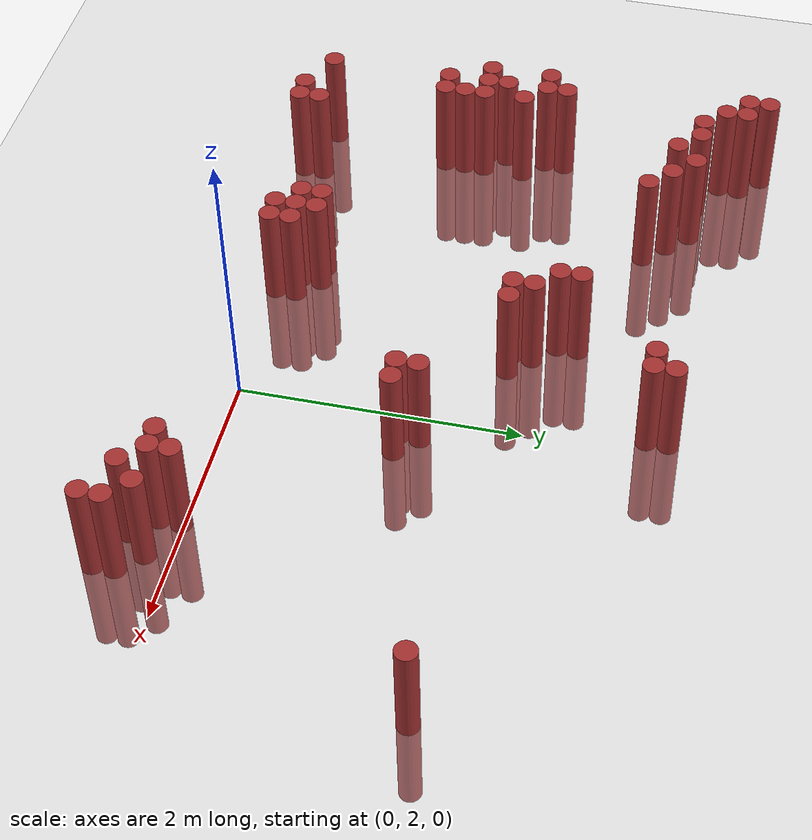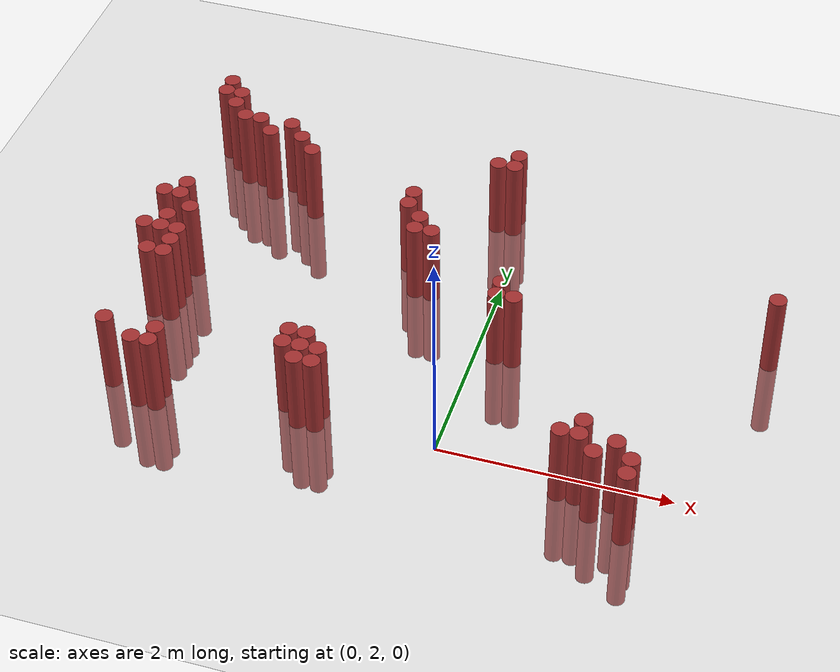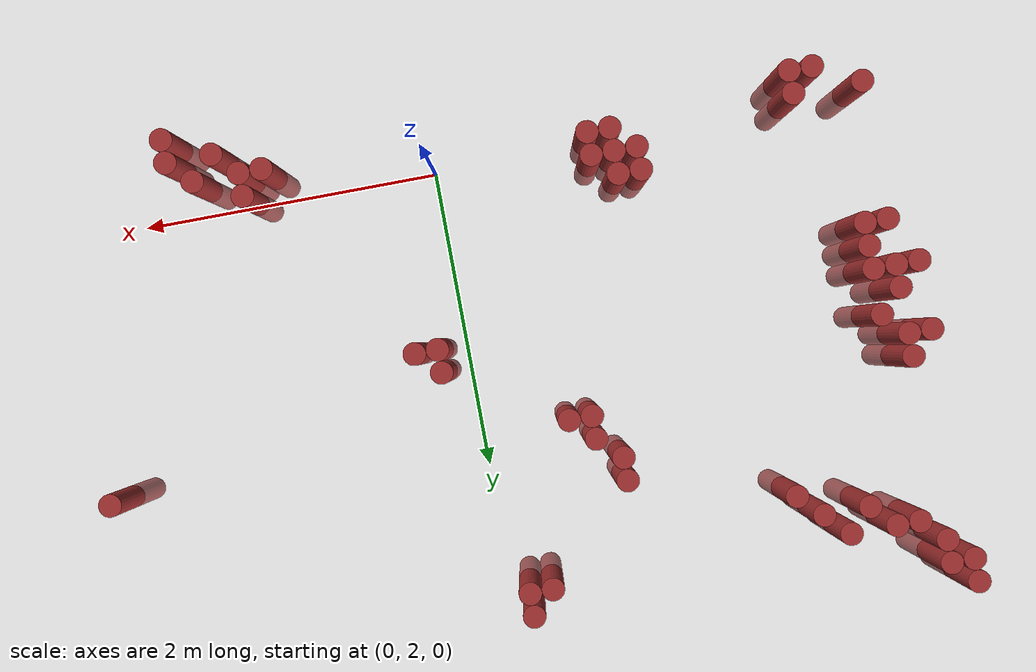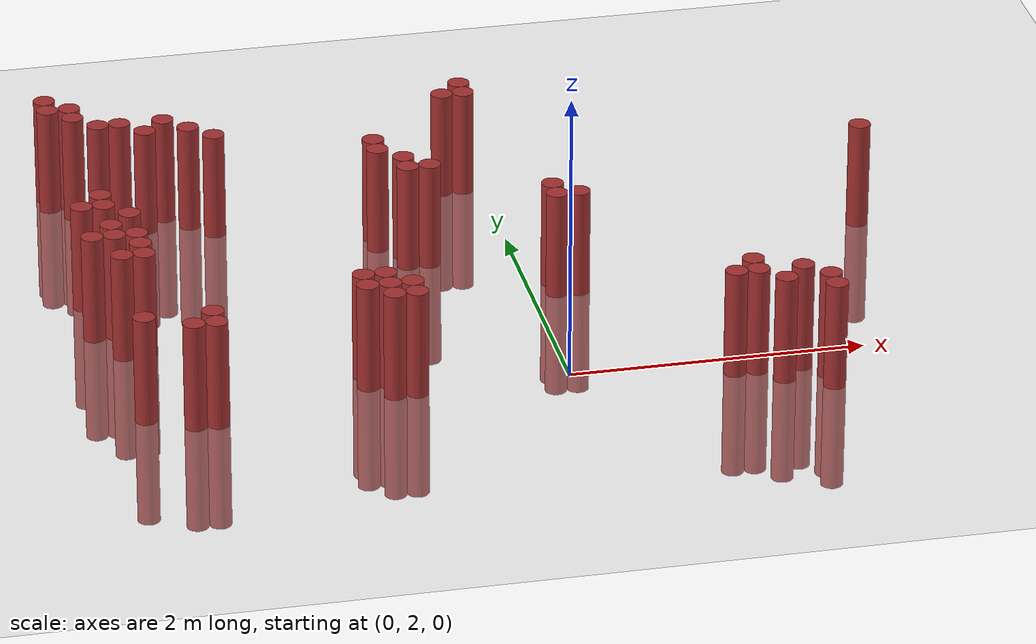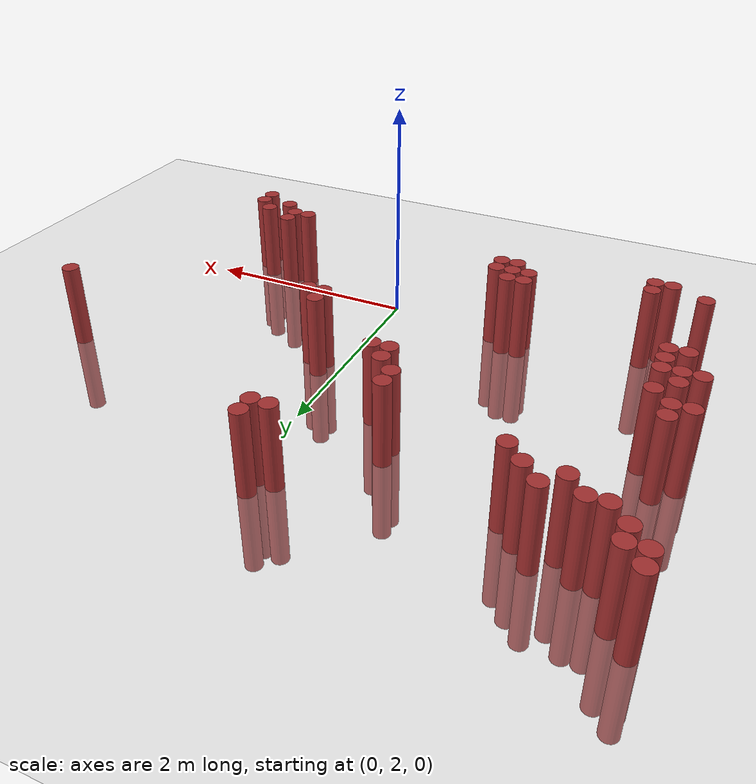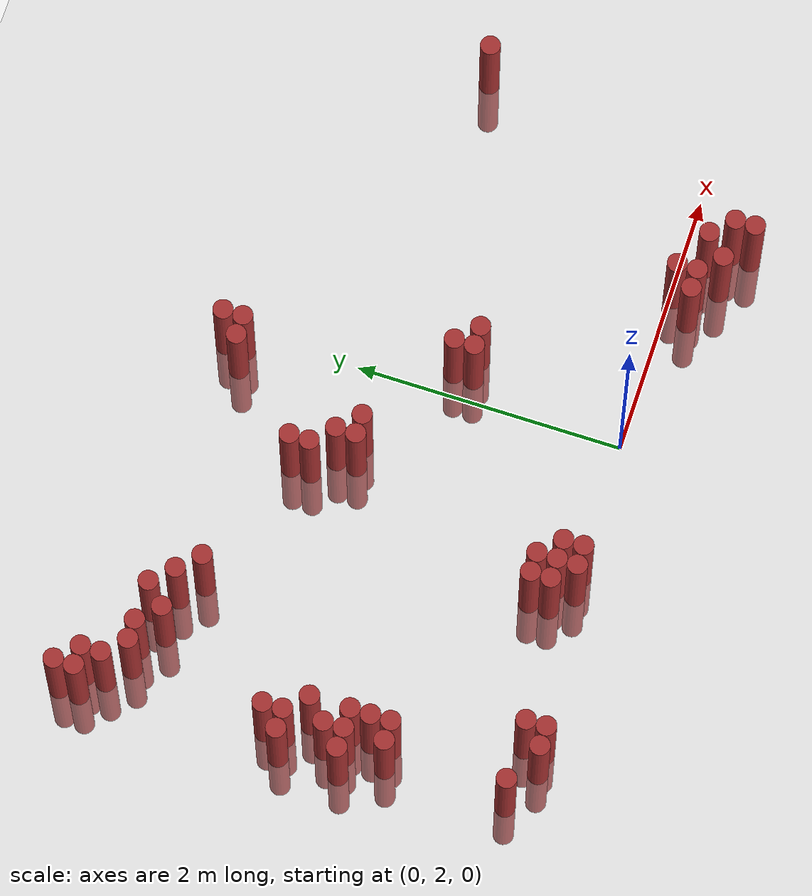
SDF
<sdf version="1.6">
 <world name="default">
  <model name="ground_plane">
   <static>1</static>
   <link name="link">
    <collision name="collision">
     <geometry><plane><normal>0 0 1</normal><size>100 100</size></plane></geometry>
     <surface><friction><ode><mu>100</mu><mu2>50</mu2></ode></friction></surface>
    </collision>
    <visual name="visual">
     <cast_shadows>0</cast_shadows>
     <geometry><plane><normal>0 0 1</normal><size>100 100</size></plane></geometry>
     <material>
      <script><uri>file://media/materials/scripts/gazebo.material</uri><name>Gazebo/Grey</name></script>
     </material>
    </visual>
   </link>
  </model>
  <model name="unit_cylinder_310">
   <static>1</static>
   <pose>-2.975000 3.175000 0.000000 0.000000 0.000000 0.000000</pose>
   <link name="link">
    <inertial>
     <mass>1</mass>
     <inertia><ixx>0.145833</ixx><ixy>0</ixy><ixz>0</ixz><iyy>0.145833</iyy><iyz>0</iyz><izz>0.125</izz></inertia>
    </inertial>
    <collision name="collision">
     <geometry><cylinder><radius>0.075000</radius><length>1.5</length></cylinder></geometry>
    </collision>
    <visual name="visual">
     <geometry><cylinder><radius>0.075000</radius><length>1.5</length></cylinder></geometry>
     <material>
      <ambient>0.648000 0.192000 0.192000 1</ambient>
      <diffuse>0.648000 0.192000 0.192000 1</diffuse>
     </material>
     <material>
      <script><name>Gazebo/Grey</name><uri>file://media/materials/scripts/gazebo.material</uri></script>
     </material>
    </visual>
   </link>
  </model>
  <model name="unit_cylinder_311">
   <static>1</static>
   <pose>-2.975000 3.625000 0.000000 0.000000 0.000000 0.000000</pose>
   <link name="link">
    <inertial>
     <mass>1</mass>
     <inertia><ixx>0.145833</ixx><ixy>0</ixy><ixz>0</ixz><iyy>0.145833</iyy><iyz>0</iyz><izz>0.125</izz></inertia>
    </inertial>
    <collision name="collision">
     <geometry><cylinder><radius>0.075000</radius><length>1.5</length></cylinder></geometry>
    </collision>
    <visual name="visual">
     <geometry><cylinder><radius>0.075000</radius><length>1.5</length></cylinder></geometry>
     <material>
      <ambient>0.648000 0.192000 0.192000 1</ambient>
      <diffuse>0.648000 0.192000 0.192000 1</diffuse>
     </material>
     <material>
      <script><name>Gazebo/Grey</name><uri>file://media/materials/scripts/gazebo.material</uri></script>
     </material>
    </visual>
   </link>
  </model>
  <model name="unit_cylinder_312">
   <static>1</static>
   <pose>-2.975000 5.125000 0.000000 0.000000 0.000000 0.000000</pose>
   <link name="link">
    <inertial>
     <mass>1</mass>
     <inertia><ixx>0.145833</ixx><ixy>0</ixy><ixz>0</ixz><iyy>0.145833</iyy><iyz>0</iyz><izz>0.125</izz></inertia>
    </inertial>
    <collision name="collision">
     <geometry><cylinder><radius>0.075000</radius><length>1.5</length></cylinder></geometry>
    </collision>
    <visual name="visual">
     <geometry><cylinder><radius>0.075000</radius><length>1.5</length></cylinder></geometry>
     <material>
      <ambient>0.648000 0.192000 0.192000 1</ambient>
      <diffuse>0.648000 0.192000 0.192000 1</diffuse>
     </material>
     <material>
      <script><name>Gazebo/Grey</name><uri>file://media/materials/scripts/gazebo.material</uri></script>
     </material>
    </visual>
   </link>
  </model>
  <model name="unit_cylinder_313">
   <static>1</static>
   <pose>-2.975000 5.275000 0.000000 0.000000 0.000000 0.000000</pose>
   <link name="link">
    <inertial>
     <mass>1</mass>
     <inertia><ixx>0.145833</ixx><ixy>0</ixy><ixz>0</ixz><iyy>0.145833</iyy><iyz>0</iyz><izz>0.125</izz></inertia>
    </inertial>
    <collision name="collision">
     <geometry><cylinder><radius>0.075000</radius><length>1.5</length></cylinder></geometry>
    </collision>
    <visual name="visual">
     <geometry><cylinder><radius>0.075000</radius><length>1.5</length></cylinder></geometry>
     <material>
      <ambient>0.648000 0.192000 0.192000 1</ambient>
      <diffuse>0.648000 0.192000 0.192000 1</diffuse>
     </material>
     <material>
      <script><name>Gazebo/Grey</name><uri>file://media/materials/scripts/gazebo.material</uri></script>
     </material>
    </visual>
   </link>
  </model>
  <model name="unit_cylinder_317">
   <static>1</static>
   <pose>-2.825000 1.975000 0.000000 0.000000 0.000000 0.000000</pose>
   <link name="link">
    <inertial>
     <mass>1</mass>
     <inertia><ixx>0.145833</ixx><ixy>0</ixy><ixz>0</ixz><iyy>0.145833</iyy><iyz>0</iyz><izz>0.125</izz></inertia>
    </inertial>
    <collision name="collision">
     <geometry><cylinder><radius>0.075000</radius><length>1.5</length></cylinder></geometry>
    </collision>
    <visual name="visual">
     <geometry><cylinder><radius>0.075000</radius><length>1.5</length></cylinder></geometry>
     <material>
      <ambient>0.648000 0.192000 0.192000 1</ambient>
      <diffuse>0.648000 0.192000 0.192000 1</diffuse>
     </material>
     <material>
      <script><name>Gazebo/Grey</name><uri>file://media/materials/scripts/gazebo.material</uri></script>
     </material>
    </visual>
   </link>
  </model>
  <model name="unit_cylinder_318">
   <static>1</static>
   <pose>-2.825000 2.875000 0.000000 0.000000 0.000000 0.000000</pose>
   <link name="link">
    <inertial>
     <mass>1</mass>
     <inertia><ixx>0.145833</ixx><ixy>0</ixy><ixz>0</ixz><iyy>0.145833</iyy><iyz>0</iyz><izz>0.125</izz></inertia>
    </inertial>
    <collision name="collision">
     <geometry><cylinder><radius>0.075000</radius><length>1.5</length></cylinder></geometry>
    </collision>
    <visual name="visual">
     <geometry><cylinder><radius>0.075000</radius><length>1.5</length></cylinder></geometry>
     <material>
      <ambient>0.648000 0.192000 0.192000 1</ambient>
      <diffuse>0.648000 0.192000 0.192000 1</diffuse>
     </material>
     <material>
      <script><name>Gazebo/Grey</name><uri>file://media/materials/scripts/gazebo.material</uri></script>
     </material>
    </visual>
   </link>
  </model>
  <model name="unit_cylinder_319">
   <static>1</static>
   <pose>-2.825000 3.175000 0.000000 0.000000 0.000000 0.000000</pose>
   <link name="link">
    <inertial>
     <mass>1</mass>
     <inertia><ixx>0.145833</ixx><ixy>0</ixy><ixz>0</ixz><iyy>0.145833</iyy><iyz>0</iyz><izz>0.125</izz></inertia>
    </inertial>
    <collision name="collision">
     <geometry><cylinder><radius>0.075000</radius><length>1.5</length></cylinder></geometry>
    </collision>
    <visual name="visual">
     <geometry><cylinder><radius>0.075000</radius><length>1.5</length></cylinder></geometry>
     <material>
      <ambient>0.648000 0.192000 0.192000 1</ambient>
      <diffuse>0.648000 0.192000 0.192000 1</diffuse>
     </material>
     <material>
      <script><name>Gazebo/Grey</name><uri>file://media/materials/scripts/gazebo.material</uri></script>
     </material>
    </visual>
   </link>
  </model>
  <model name="unit_cylinder_320">
   <static>1</static>
   <pose>-2.825000 3.325000 0.000000 0.000000 0.000000 0.000000</pose>
   <link name="link">
    <inertial>
     <mass>1</mass>
     <inertia><ixx>0.145833</ixx><ixy>0</ixy><ixz>0</ixz><iyy>0.145833</iyy><iyz>0</iyz><izz>0.125</izz></inertia>
    </inertial>
    <collision name="collision">
     <geometry><cylinder><radius>0.075000</radius><length>1.5</length></cylinder></geometry>
    </collision>
    <visual name="visual">
     <geometry><cylinder><radius>0.075000</radius><length>1.5</length></cylinder></geometry>
     <material>
      <ambient>0.648000 0.192000 0.192000 1</ambient>
      <diffuse>0.648000 0.192000 0.192000 1</diffuse>
     </material>
     <material>
      <script><name>Gazebo/Grey</name><uri>file://media/materials/scripts/gazebo.material</uri></script>
     </material>
    </visual>
   </link>
  </model>
  <model name="unit_cylinder_321">
   <static>1</static>
   <pose>-2.825000 3.625000 0.000000 0.000000 0.000000 0.000000</pose>
   <link name="link">
    <inertial>
     <mass>1</mass>
     <inertia><ixx>0.145833</ixx><ixy>0</ixy><ixz>0</ixz><iyy>0.145833</iyy><iyz>0</iyz><izz>0.125</izz></inertia>
    </inertial>
    <collision name="collision">
     <geometry><cylinder><radius>0.075000</radius><length>1.5</length></cylinder></geometry>
    </collision>
    <visual name="visual">
     <geometry><cylinder><radius>0.075000</radius><length>1.5</length></cylinder></geometry>
     <material>
      <ambient>0.648000 0.192000 0.192000 1</ambient>
      <diffuse>0.648000 0.192000 0.192000 1</diffuse>
     </material>
     <material>
      <script><name>Gazebo/Grey</name><uri>file://media/materials/scripts/gazebo.material</uri></script>
     </material>
    </visual>
   </link>
  </model>
  <model name="unit_cylinder_322">
   <static>1</static>
   <pose>-2.825000 3.775000 0.000000 0.000000 0.000000 0.000000</pose>
   <link name="link">
    <inertial>
     <mass>1</mass>
     <inertia><ixx>0.145833</ixx><ixy>0</ixy><ixz>0</ixz><iyy>0.145833</iyy><iyz>0</iyz><izz>0.125</izz></inertia>
    </inertial>
    <collision name="collision">
     <geometry><cylinder><radius>0.075000</radius><length>1.5</length></cylinder></geometry>
    </collision>
    <visual name="visual">
     <geometry><cylinder><radius>0.075000</radius><length>1.5</length></cylinder></geometry>
     <material>
      <ambient>0.648000 0.192000 0.192000 1</ambient>
      <diffuse>0.648000 0.192000 0.192000 1</diffuse>
     </material>
     <material>
      <script><name>Gazebo/Grey</name><uri>file://media/materials/scripts/gazebo.material</uri></script>
     </material>
    </visual>
   </link>
  </model>
  <model name="unit_cylinder_323">
   <static>1</static>
   <pose>-2.825000 4.975000 0.000000 0.000000 0.000000 0.000000</pose>
   <link name="link">
    <inertial>
     <mass>1</mass>
     <inertia><ixx>0.145833</ixx><ixy>0</ixy><ixz>0</ixz><iyy>0.145833</iyy><iyz>0</iyz><izz>0.125</izz></inertia>
    </inertial>
    <collision name="collision">
     <geometry><cylinder><radius>0.075000</radius><length>1.5</length></cylinder></geometry>
    </collision>
    <visual name="visual">
     <geometry><cylinder><radius>0.075000</radius><length>1.5</length></cylinder></geometry>
     <material>
      <ambient>0.648000 0.192000 0.192000 1</ambient>
      <diffuse>0.648000 0.192000 0.192000 1</diffuse>
     </material>
     <material>
      <script><name>Gazebo/Grey</name><uri>file://media/materials/scripts/gazebo.material</uri></script>
     </material>
    </visual>
   </link>
  </model>
  <model name="unit_cylinder_324">
   <static>1</static>
   <pose>-2.825000 5.125000 0.000000 0.000000 0.000000 0.000000</pose>
   <link name="link">
    <inertial>
     <mass>1</mass>
     <inertia><ixx>0.145833</ixx><ixy>0</ixy><ixz>0</ixz><iyy>0.145833</iyy><iyz>0</iyz><izz>0.125</izz></inertia>
    </inertial>
    <collision name="collision">
     <geometry><cylinder><radius>0.075000</radius><length>1.5</length></cylinder></geometry>
    </collision>
    <visual name="visual">
     <geometry><cylinder><radius>0.075000</radius><length>1.5</length></cylinder></geometry>
     <material>
      <ambient>0.648000 0.192000 0.192000 1</ambient>
      <diffuse>0.648000 0.192000 0.192000 1</diffuse>
     </material>
     <material>
      <script><name>Gazebo/Grey</name><uri>file://media/materials/scripts/gazebo.material</uri></script>
     </material>
    </visual>
   </link>
  </model>
  <model name="unit_cylinder_325">
   <static>1</static>
   <pose>-2.675000 2.875000 0.000000 0.000000 0.000000 0.000000</pose>
   <link name="link">
    <inertial>
     <mass>1</mass>
     <inertia><ixx>0.145833</ixx><ixy>0</ixy><ixz>0</ixz><iyy>0.145833</iyy><iyz>0</iyz><izz>0.125</izz></inertia>
    </inertial>
    <collision name="collision">
     <geometry><cylinder><radius>0.075000</radius><length>1.5</length></cylinder></geometry>
    </collision>
    <visual name="visual">
     <geometry><cylinder><radius>0.075000</radius><length>1.5</length></cylinder></geometry>
     <material>
      <ambient>0.648000 0.192000 0.192000 1</ambient>
      <diffuse>0.648000 0.192000 0.192000 1</diffuse>
     </material>
     <material>
      <script><name>Gazebo/Grey</name><uri>file://media/materials/scripts/gazebo.material</uri></script>
     </material>
    </visual>
   </link>
  </model>
  <model name="unit_cylinder_326">
   <static>1</static>
   <pose>-2.675000 3.025000 0.000000 0.000000 0.000000 0.000000</pose>
   <link name="link">
    <inertial>
     <mass>1</mass>
     <inertia><ixx>0.145833</ixx><ixy>0</ixy><ixz>0</ixz><iyy>0.145833</iyy><iyz>0</iyz><izz>0.125</izz></inertia>
    </inertial>
    <collision name="collision">
     <geometry><cylinder><radius>0.075000</radius><length>1.5</length></cylinder></geometry>
    </collision>
    <visual name="visual">
     <geometry><cylinder><radius>0.075000</radius><length>1.5</length></cylinder></geometry>
     <material>
      <ambient>0.648000 0.192000 0.192000 1</ambient>
      <diffuse>0.648000 0.192000 0.192000 1</diffuse>
     </material>
     <material>
      <script><name>Gazebo/Grey</name><uri>file://media/materials/scripts/gazebo.material</uri></script>
     </material>
    </visual>
   </link>
  </model>
  <model name="unit_cylinder_327">
   <static>1</static>
   <pose>-2.675000 3.175000 0.000000 0.000000 0.000000 0.000000</pose>
   <link name="link">
    <inertial>
     <mass>1</mass>
     <inertia><ixx>0.145833</ixx><ixy>0</ixy><ixz>0</ixz><iyy>0.145833</iyy><iyz>0</iyz><izz>0.125</izz></inertia>
    </inertial>
    <collision name="collision">
     <geometry><cylinder><radius>0.075000</radius><length>1.5</length></cylinder></geometry>
    </collision>
    <visual name="visual">
     <geometry><cylinder><radius>0.075000</radius><length>1.5</length></cylinder></geometry>
     <material>
      <ambient>0.648000 0.192000 0.192000 1</ambient>
      <diffuse>0.648000 0.192000 0.192000 1</diffuse>
     </material>
     <material>
      <script><name>Gazebo/Grey</name><uri>file://media/materials/scripts/gazebo.material</uri></script>
     </material>
    </visual>
   </link>
  </model>
  <model name="unit_cylinder_328">
   <static>1</static>
   <pose>-2.675000 3.475000 0.000000 0.000000 0.000000 0.000000</pose>
   <link name="link">
    <inertial>
     <mass>1</mass>
     <inertia><ixx>0.145833</ixx><ixy>0</ixy><ixz>0</ixz><iyy>0.145833</iyy><iyz>0</iyz><izz>0.125</izz></inertia>
    </inertial>
    <collision name="collision">
     <geometry><cylinder><radius>0.075000</radius><length>1.5</length></cylinder></geometry>
    </collision>
    <visual name="visual">
     <geometry><cylinder><radius>0.075000</radius><length>1.5</length></cylinder></geometry>
     <material>
      <ambient>0.648000 0.192000 0.192000 1</ambient>
      <diffuse>0.648000 0.192000 0.192000 1</diffuse>
     </material>
     <material>
      <script><name>Gazebo/Grey</name><uri>file://media/materials/scripts/gazebo.material</uri></script>
     </material>
    </visual>
   </link>
  </model>
  <model name="unit_cylinder_329">
   <static>1</static>
   <pose>-2.675000 4.825000 0.000000 0.000000 0.000000 0.000000</pose>
   <link name="link">
    <inertial>
     <mass>1</mass>
     <inertia><ixx>0.145833</ixx><ixy>0</ixy><ixz>0</ixz><iyy>0.145833</iyy><iyz>0</iyz><izz>0.125</izz></inertia>
    </inertial>
    <collision name="collision">
     <geometry><cylinder><radius>0.075000</radius><length>1.5</length></cylinder></geometry>
    </collision>
    <visual name="visual">
     <geometry><cylinder><radius>0.075000</radius><length>1.5</length></cylinder></geometry>
     <material>
      <ambient>0.648000 0.192000 0.192000 1</ambient>
      <diffuse>0.648000 0.192000 0.192000 1</diffuse>
     </material>
     <material>
      <script><name>Gazebo/Grey</name><uri>file://media/materials/scripts/gazebo.material</uri></script>
     </material>
    </visual>
   </link>
  </model>
  <model name="unit_cylinder_332">
   <static>1</static>
   <pose>-2.525000 1.825000 0.000000 0.000000 0.000000 0.000000</pose>
   <link name="link">
    <inertial>
     <mass>1</mass>
     <inertia><ixx>0.145833</ixx><ixy>0</ixy><ixz>0</ixz><iyy>0.145833</iyy><iyz>0</iyz><izz>0.125</izz></inertia>
    </inertial>
    <collision name="collision">
     <geometry><cylinder><radius>0.075000</radius><length>1.5</length></cylinder></geometry>
    </collision>
    <visual name="visual">
     <geometry><cylinder><radius>0.075000</radius><length>1.5</length></cylinder></geometry>
     <material>
      <ambient>0.648000 0.192000 0.192000 1</ambient>
      <diffuse>0.648000 0.192000 0.192000 1</diffuse>
     </material>
     <material>
      <script><name>Gazebo/Grey</name><uri>file://media/materials/scripts/gazebo.material</uri></script>
     </material>
    </visual>
   </link>
  </model>
  <model name="unit_cylinder_333">
   <static>1</static>
   <pose>-2.525000 4.825000 0.000000 0.000000 0.000000 0.000000</pose>
   <link name="link">
    <inertial>
     <mass>1</mass>
     <inertia><ixx>0.145833</ixx><ixy>0</ixy><ixz>0</ixz><iyy>0.145833</iyy><iyz>0</iyz><izz>0.125</izz></inertia>
    </inertial>
    <collision name="collision">
     <geometry><cylinder><radius>0.075000</radius><length>1.5</length></cylinder></geometry>
    </collision>
    <visual name="visual">
     <geometry><cylinder><radius>0.075000</radius><length>1.5</length></cylinder></geometry>
     <material>
      <ambient>0.648000 0.192000 0.192000 1</ambient>
      <diffuse>0.648000 0.192000 0.192000 1</diffuse>
     </material>
     <material>
      <script><name>Gazebo/Grey</name><uri>file://media/materials/scripts/gazebo.material</uri></script>
     </material>
    </visual>
   </link>
  </model>
  <model name="unit_cylinder_337">
   <static>1</static>
   <pose>-2.375000 1.825000 0.000000 0.000000 0.000000 0.000000</pose>
   <link name="link">
    <inertial>
     <mass>1</mass>
     <inertia><ixx>0.145833</ixx><ixy>0</ixy><ixz>0</ixz><iyy>0.145833</iyy><iyz>0</iyz><izz>0.125</izz></inertia>
    </inertial>
    <collision name="collision">
     <geometry><cylinder><radius>0.075000</radius><length>1.5</length></cylinder></geometry>
    </collision>
    <visual name="visual">
     <geometry><cylinder><radius>0.075000</radius><length>1.5</length></cylinder></geometry>
     <material>
      <ambient>0.648000 0.192000 0.192000 1</ambient>
      <diffuse>0.648000 0.192000 0.192000 1</diffuse>
     </material>
     <material>
      <script><name>Gazebo/Grey</name><uri>file://media/materials/scripts/gazebo.material</uri></script>
     </material>
    </visual>
   </link>
  </model>
  <model name="unit_cylinder_338">
   <static>1</static>
   <pose>-2.375000 1.975000 0.000000 0.000000 0.000000 0.000000</pose>
   <link name="link">
    <inertial>
     <mass>1</mass>
     <inertia><ixx>0.145833</ixx><ixy>0</ixy><ixz>0</ixz><iyy>0.145833</iyy><iyz>0</iyz><izz>0.125</izz></inertia>
    </inertial>
    <collision name="collision">
     <geometry><cylinder><radius>0.075000</radius><length>1.5</length></cylinder></geometry>
    </collision>
    <visual name="visual">
     <geometry><cylinder><radius>0.075000</radius><length>1.5</length></cylinder></geometry>
     <material>
      <ambient>0.648000 0.192000 0.192000 1</ambient>
      <diffuse>0.648000 0.192000 0.192000 1</diffuse>
     </material>
     <material>
      <script><name>Gazebo/Grey</name><uri>file://media/materials/scripts/gazebo.material</uri></script>
     </material>
    </visual>
   </link>
  </model>
  <model name="unit_cylinder_339">
   <static>1</static>
   <pose>-2.375000 4.675000 0.000000 0.000000 0.000000 0.000000</pose>
   <link name="link">
    <inertial>
     <mass>1</mass>
     <inertia><ixx>0.145833</ixx><ixy>0</ixy><ixz>0</ixz><iyy>0.145833</iyy><iyz>0</iyz><izz>0.125</izz></inertia>
    </inertial>
    <collision name="collision">
     <geometry><cylinder><radius>0.075000</radius><length>1.5</length></cylinder></geometry>
    </collision>
    <visual name="visual">
     <geometry><cylinder><radius>0.075000</radius><length>1.5</length></cylinder></geometry>
     <material>
      <ambient>0.648000 0.192000 0.192000 1</ambient>
      <diffuse>0.648000 0.192000 0.192000 1</diffuse>
     </material>
     <material>
      <script><name>Gazebo/Grey</name><uri>file://media/materials/scripts/gazebo.material</uri></script>
     </material>
    </visual>
   </link>
  </model>
  <model name="unit_cylinder_345">
   <static>1</static>
   <pose>-2.225000 4.825000 0.000000 0.000000 0.000000 0.000000</pose>
   <link name="link">
    <inertial>
     <mass>1</mass>
     <inertia><ixx>0.145833</ixx><ixy>0</ixy><ixz>0</ixz><iyy>0.145833</iyy><iyz>0</iyz><izz>0.125</izz></inertia>
    </inertial>
    <collision name="collision">
     <geometry><cylinder><radius>0.075000</radius><length>1.5</length></cylinder></geometry>
    </collision>
    <visual name="visual">
     <geometry><cylinder><radius>0.075000</radius><length>1.5</length></cylinder></geometry>
     <material>
      <ambient>0.648000 0.192000 0.192000 1</ambient>
      <diffuse>0.648000 0.192000 0.192000 1</diffuse>
     </material>
     <material>
      <script><name>Gazebo/Grey</name><uri>file://media/materials/scripts/gazebo.material</uri></script>
     </material>
    </visual>
   </link>
  </model>
  <model name="unit_cylinder_349">
   <static>1</static>
   <pose>-2.075000 4.675000 0.000000 0.000000 0.000000 0.000000</pose>
   <link name="link">
    <inertial>
     <mass>1</mass>
     <inertia><ixx>0.145833</ixx><ixy>0</ixy><ixz>0</ixz><iyy>0.145833</iyy><iyz>0</iyz><izz>0.125</izz></inertia>
    </inertial>
    <collision name="collision">
     <geometry><cylinder><radius>0.075000</radius><length>1.5</length></cylinder></geometry>
    </collision>
    <visual name="visual">
     <geometry><cylinder><radius>0.075000</radius><length>1.5</length></cylinder></geometry>
     <material>
      <ambient>0.648000 0.192000 0.192000 1</ambient>
      <diffuse>0.648000 0.192000 0.192000 1</diffuse>
     </material>
     <material>
      <script><name>Gazebo/Grey</name><uri>file://media/materials/scripts/gazebo.material</uri></script>
     </material>
    </visual>
   </link>
  </model>
  <model name="unit_cylinder_350">
   <static>1</static>
   <pose>-1.925000 4.525000 0.000000 0.000000 0.000000 0.000000</pose>
   <link name="link">
    <inertial>
     <mass>1</mass>
     <inertia><ixx>0.145833</ixx><ixy>0</ixy><ixz>0</ixz><iyy>0.145833</iyy><iyz>0</iyz><izz>0.125</izz></inertia>
    </inertial>
    <collision name="collision">
     <geometry><cylinder><radius>0.075000</radius><length>1.5</length></cylinder></geometry>
    </collision>
    <visual name="visual">
     <geometry><cylinder><radius>0.075000</radius><length>1.5</length></cylinder></geometry>
     <material>
      <ambient>0.648000 0.192000 0.192000 1</ambient>
      <diffuse>0.648000 0.192000 0.192000 1</diffuse>
     </material>
     <material>
      <script><name>Gazebo/Grey</name><uri>file://media/materials/scripts/gazebo.material</uri></script>
     </material>
    </visual>
   </link>
  </model>
  <model name="unit_cylinder_360">
   <static>1</static>
   <pose>-1.325000 2.125000 0.000000 0.000000 0.000000 0.000000</pose>
   <link name="link">
    <inertial>
     <mass>1</mass>
     <inertia><ixx>0.145833</ixx><ixy>0</ixy><ixz>0</ixz><iyy>0.145833</iyy><iyz>0</iyz><izz>0.125</izz></inertia>
    </inertial>
    <collision name="collision">
     <geometry><cylinder><radius>0.075000</radius><length>1.5</length></cylinder></geometry>
    </collision>
    <visual name="visual">
     <geometry><cylinder><radius>0.075000</radius><length>1.5</length></cylinder></geometry>
     <material>
      <ambient>0.648000 0.192000 0.192000 1</ambient>
      <diffuse>0.648000 0.192000 0.192000 1</diffuse>
     </material>
     <material>
      <script><name>Gazebo/Grey</name><uri>file://media/materials/scripts/gazebo.material</uri></script>
     </material>
    </visual>
   </link>
  </model>
  <model name="unit_cylinder_361">
   <static>1</static>
   <pose>-1.325000 2.275000 0.000000 0.000000 0.000000 0.000000</pose>
   <link name="link">
    <inertial>
     <mass>1</mass>
     <inertia><ixx>0.145833</ixx><ixy>0</ixy><ixz>0</ixz><iyy>0.145833</iyy><iyz>0</iyz><izz>0.125</izz></inertia>
    </inertial>
    <collision name="collision">
     <geometry><cylinder><radius>0.075000</radius><length>1.5</length></cylinder></geometry>
    </collision>
    <visual name="visual">
     <geometry><cylinder><radius>0.075000</radius><length>1.5</length></cylinder></geometry>
     <material>
      <ambient>0.648000 0.192000 0.192000 1</ambient>
      <diffuse>0.648000 0.192000 0.192000 1</diffuse>
     </material>
     <material>
      <script><name>Gazebo/Grey</name><uri>file://media/materials/scripts/gazebo.material</uri></script>
     </material>
    </visual>
   </link>
  </model>
  <model name="unit_cylinder_363">
   <static>1</static>
   <pose>-1.175000 1.975000 0.000000 0.000000 0.000000 0.000000</pose>
   <link name="link">
    <inertial>
     <mass>1</mass>
     <inertia><ixx>0.145833</ixx><ixy>0</ixy><ixz>0</ixz><iyy>0.145833</iyy><iyz>0</iyz><izz>0.125</izz></inertia>
    </inertial>
    <collision name="collision">
     <geometry><cylinder><radius>0.075000</radius><length>1.5</length></cylinder></geometry>
    </collision>
    <visual name="visual">
     <geometry><cylinder><radius>0.075000</radius><length>1.5</length></cylinder></geometry>
     <material>
      <ambient>0.648000 0.192000 0.192000 1</ambient>
      <diffuse>0.648000 0.192000 0.192000 1</diffuse>
     </material>
     <material>
      <script><name>Gazebo/Grey</name><uri>file://media/materials/scripts/gazebo.material</uri></script>
     </material>
    </visual>
   </link>
  </model>
  <model name="unit_cylinder_364">
   <static>1</static>
   <pose>-1.175000 2.125000 0.000000 0.000000 0.000000 0.000000</pose>
   <link name="link">
    <inertial>
     <mass>1</mass>
     <inertia><ixx>0.145833</ixx><ixy>0</ixy><ixz>0</ixz><iyy>0.145833</iyy><iyz>0</iyz><izz>0.125</izz></inertia>
    </inertial>
    <collision name="collision">
     <geometry><cylinder><radius>0.075000</radius><length>1.5</length></cylinder></geometry>
    </collision>
    <visual name="visual">
     <geometry><cylinder><radius>0.075000</radius><length>1.5</length></cylinder></geometry>
     <material>
      <ambient>0.648000 0.192000 0.192000 1</ambient>
      <diffuse>0.648000 0.192000 0.192000 1</diffuse>
     </material>
     <material>
      <script><name>Gazebo/Grey</name><uri>file://media/materials/scripts/gazebo.material</uri></script>
     </material>
    </visual>
   </link>
  </model>
  <model name="unit_cylinder_365">
   <static>1</static>
   <pose>-1.175000 2.275000 0.000000 0.000000 0.000000 0.000000</pose>
   <link name="link">
    <inertial>
     <mass>1</mass>
     <inertia><ixx>0.145833</ixx><ixy>0</ixy><ixz>0</ixz><iyy>0.145833</iyy><iyz>0</iyz><izz>0.125</izz></inertia>
    </inertial>
    <collision name="collision">
     <geometry><cylinder><radius>0.075000</radius><length>1.5</length></cylinder></geometry>
    </collision>
    <visual name="visual">
     <geometry><cylinder><radius>0.075000</radius><length>1.5</length></cylinder></geometry>
     <material>
      <ambient>0.648000 0.192000 0.192000 1</ambient>
      <diffuse>0.648000 0.192000 0.192000 1</diffuse>
     </material>
     <material>
      <script><name>Gazebo/Grey</name><uri>file://media/materials/scripts/gazebo.material</uri></script>
     </material>
    </visual>
   </link>
  </model>
  <model name="unit_cylinder_367">
   <static>1</static>
   <pose>-1.025000 1.975000 0.000000 0.000000 0.000000 0.000000</pose>
   <link name="link">
    <inertial>
     <mass>1</mass>
     <inertia><ixx>0.145833</ixx><ixy>0</ixy><ixz>0</ixz><iyy>0.145833</iyy><iyz>0</iyz><izz>0.125</izz></inertia>
    </inertial>
    <collision name="collision">
     <geometry><cylinder><radius>0.075000</radius><length>1.5</length></cylinder></geometry>
    </collision>
    <visual name="visual">
     <geometry><cylinder><radius>0.075000</radius><length>1.5</length></cylinder></geometry>
     <material>
      <ambient>0.648000 0.192000 0.192000 1</ambient>
      <diffuse>0.648000 0.192000 0.192000 1</diffuse>
     </material>
     <material>
      <script><name>Gazebo/Grey</name><uri>file://media/materials/scripts/gazebo.material</uri></script>
     </material>
    </visual>
   </link>
  </model>
  <model name="unit_cylinder_368">
   <static>1</static>
   <pose>-1.025000 2.125000 0.000000 0.000000 0.000000 0.000000</pose>
   <link name="link">
    <inertial>
     <mass>1</mass>
     <inertia><ixx>0.145833</ixx><ixy>0</ixy><ixz>0</ixz><iyy>0.145833</iyy><iyz>0</iyz><izz>0.125</izz></inertia>
    </inertial>
    <collision name="collision">
     <geometry><cylinder><radius>0.075000</radius><length>1.5</length></cylinder></geometry>
    </collision>
    <visual name="visual">
     <geometry><cylinder><radius>0.075000</radius><length>1.5</length></cylinder></geometry>
     <material>
      <ambient>0.648000 0.192000 0.192000 1</ambient>
      <diffuse>0.648000 0.192000 0.192000 1</diffuse>
     </material>
     <material>
      <script><name>Gazebo/Grey</name><uri>file://media/materials/scripts/gazebo.material</uri></script>
     </material>
    </visual>
   </link>
  </model>
  <model name="unit_cylinder_370">
   <static>1</static>
   <pose>-0.875000 4.075000 0.000000 0.000000 0.000000 0.000000</pose>
   <link name="link">
    <inertial>
     <mass>1</mass>
     <inertia><ixx>0.145833</ixx><ixy>0</ixy><ixz>0</ixz><iyy>0.145833</iyy><iyz>0</iyz><izz>0.125</izz></inertia>
    </inertial>
    <collision name="collision">
     <geometry><cylinder><radius>0.075000</radius><length>1.5</length></cylinder></geometry>
    </collision>
    <visual name="visual">
     <geometry><cylinder><radius>0.075000</radius><length>1.5</length></cylinder></geometry>
     <material>
      <ambient>0.648000 0.192000 0.192000 1</ambient>
      <diffuse>0.648000 0.192000 0.192000 1</diffuse>
     </material>
     <material>
      <script><name>Gazebo/Grey</name><uri>file://media/materials/scripts/gazebo.material</uri></script>
     </material>
    </visual>
   </link>
  </model>
  <model name="unit_cylinder_371">
   <static>1</static>
   <pose>-0.875000 4.225000 0.000000 0.000000 0.000000 0.000000</pose>
   <link name="link">
    <inertial>
     <mass>1</mass>
     <inertia><ixx>0.145833</ixx><ixy>0</ixy><ixz>0</ixz><iyy>0.145833</iyy><iyz>0</iyz><izz>0.125</izz></inertia>
    </inertial>
    <collision name="collision">
     <geometry><cylinder><radius>0.075000</radius><length>1.5</length></cylinder></geometry>
    </collision>
    <visual name="visual">
     <geometry><cylinder><radius>0.075000</radius><length>1.5</length></cylinder></geometry>
     <material>
      <ambient>0.648000 0.192000 0.192000 1</ambient>
      <diffuse>0.648000 0.192000 0.192000 1</diffuse>
     </material>
     <material>
      <script><name>Gazebo/Grey</name><uri>file://media/materials/scripts/gazebo.material</uri></script>
     </material>
    </visual>
   </link>
  </model>
  <model name="unit_cylinder_374">
   <static>1</static>
   <pose>-0.725000 3.775000 0.000000 0.000000 0.000000 0.000000</pose>
   <link name="link">
    <inertial>
     <mass>1</mass>
     <inertia><ixx>0.145833</ixx><ixy>0</ixy><ixz>0</ixz><iyy>0.145833</iyy><iyz>0</iyz><izz>0.125</izz></inertia>
    </inertial>
    <collision name="collision">
     <geometry><cylinder><radius>0.075000</radius><length>1.5</length></cylinder></geometry>
    </collision>
    <visual name="visual">
     <geometry><cylinder><radius>0.075000</radius><length>1.5</length></cylinder></geometry>
     <material>
      <ambient>0.648000 0.192000 0.192000 1</ambient>
      <diffuse>0.648000 0.192000 0.192000 1</diffuse>
     </material>
     <material>
      <script><name>Gazebo/Grey</name><uri>file://media/materials/scripts/gazebo.material</uri></script>
     </material>
    </visual>
   </link>
  </model>
  <model name="unit_cylinder_375">
   <static>1</static>
   <pose>-0.725000 3.925000 0.000000 0.000000 0.000000 0.000000</pose>
   <link name="link">
    <inertial>
     <mass>1</mass>
     <inertia><ixx>0.145833</ixx><ixy>0</ixy><ixz>0</ixz><iyy>0.145833</iyy><iyz>0</iyz><izz>0.125</izz></inertia>
    </inertial>
    <collision name="collision">
     <geometry><cylinder><radius>0.075000</radius><length>1.5</length></cylinder></geometry>
    </collision>
    <visual name="visual">
     <geometry><cylinder><radius>0.075000</radius><length>1.5</length></cylinder></geometry>
     <material>
      <ambient>0.648000 0.192000 0.192000 1</ambient>
      <diffuse>0.648000 0.192000 0.192000 1</diffuse>
     </material>
     <material>
      <script><name>Gazebo/Grey</name><uri>file://media/materials/scripts/gazebo.material</uri></script>
     </material>
    </visual>
   </link>
  </model>
  <model name="unit_cylinder_379">
   <static>1</static>
   <pose>-0.575000 3.775000 0.000000 0.000000 0.000000 0.000000</pose>
   <link name="link">
    <inertial>
     <mass>1</mass>
     <inertia><ixx>0.145833</ixx><ixy>0</ixy><ixz>0</ixz><iyy>0.145833</iyy><iyz>0</iyz><izz>0.125</izz></inertia>
    </inertial>
    <collision name="collision">
     <geometry><cylinder><radius>0.075000</radius><length>1.5</length></cylinder></geometry>
    </collision>
    <visual name="visual">
     <geometry><cylinder><radius>0.075000</radius><length>1.5</length></cylinder></geometry>
     <material>
      <ambient>0.648000 0.192000 0.192000 1</ambient>
      <diffuse>0.648000 0.192000 0.192000 1</diffuse>
     </material>
     <material>
      <script><name>Gazebo/Grey</name><uri>file://media/materials/scripts/gazebo.material</uri></script>
     </material>
    </visual>
   </link>
  </model>
  <model name="unit_cylinder_389">
   <static>1</static>
   <pose>-0.275000 4.825000 0.000000 0.000000 0.000000 0.000000</pose>
   <link name="link">
    <inertial>
     <mass>1</mass>
     <inertia><ixx>0.145833</ixx><ixy>0</ixy><ixz>0</ixz><iyy>0.145833</iyy><iyz>0</iyz><izz>0.125</izz></inertia>
    </inertial>
    <collision name="collision">
     <geometry><cylinder><radius>0.075000</radius><length>1.5</length></cylinder></geometry>
    </collision>
    <visual name="visual">
     <geometry><cylinder><radius>0.075000</radius><length>1.5</length></cylinder></geometry>
     <material>
      <ambient>0.648000 0.192000 0.192000 1</ambient>
      <diffuse>0.648000 0.192000 0.192000 1</diffuse>
     </material>
     <material>
      <script><name>Gazebo/Grey</name><uri>file://media/materials/scripts/gazebo.material</uri></script>
     </material>
    </visual>
   </link>
  </model>
  <model name="unit_cylinder_394">
   <static>1</static>
   <pose>-0.125000 4.825000 0.000000 0.000000 0.000000 0.000000</pose>
   <link name="link">
    <inertial>
     <mass>1</mass>
     <inertia><ixx>0.145833</ixx><ixy>0</ixy><ixz>0</ixz><iyy>0.145833</iyy><iyz>0</iyz><izz>0.125</izz></inertia>
    </inertial>
    <collision name="collision">
     <geometry><cylinder><radius>0.075000</radius><length>1.5</length></cylinder></geometry>
    </collision>
    <visual name="visual">
     <geometry><cylinder><radius>0.075000</radius><length>1.5</length></cylinder></geometry>
     <material>
      <ambient>0.648000 0.192000 0.192000 1</ambient>
      <diffuse>0.648000 0.192000 0.192000 1</diffuse>
     </material>
     <material>
      <script><name>Gazebo/Grey</name><uri>file://media/materials/scripts/gazebo.material</uri></script>
     </material>
    </visual>
   </link>
  </model>
  <model name="unit_cylinder_395">
   <static>1</static>
   <pose>-0.125000 4.975000 0.000000 0.000000 0.000000 0.000000</pose>
   <link name="link">
    <inertial>
     <mass>1</mass>
     <inertia><ixx>0.145833</ixx><ixy>0</ixy><ixz>0</ixz><iyy>0.145833</iyy><iyz>0</iyz><izz>0.125</izz></inertia>
    </inertial>
    <collision name="collision">
     <geometry><cylinder><radius>0.075000</radius><length>1.5</length></cylinder></geometry>
    </collision>
    <visual name="visual">
     <geometry><cylinder><radius>0.075000</radius><length>1.5</length></cylinder></geometry>
     <material>
      <ambient>0.648000 0.192000 0.192000 1</ambient>
      <diffuse>0.648000 0.192000 0.192000 1</diffuse>
     </material>
     <material>
      <script><name>Gazebo/Grey</name><uri>file://media/materials/scripts/gazebo.material</uri></script>
     </material>
    </visual>
   </link>
  </model>
  <model name="unit_cylinder_399">
   <static>1</static>
   <pose>0.175000 3.175000 0.000000 0.000000 0.000000 0.000000</pose>
   <link name="link">
    <inertial>
     <mass>1</mass>
     <inertia><ixx>0.145833</ixx><ixy>0</ixy><ixz>0</ixz><iyy>0.145833</iyy><iyz>0</iyz><izz>0.125</izz></inertia>
    </inertial>
    <collision name="collision">
     <geometry><cylinder><radius>0.075000</radius><length>1.5</length></cylinder></geometry>
    </collision>
    <visual name="visual">
     <geometry><cylinder><radius>0.075000</radius><length>1.5</length></cylinder></geometry>
     <material>
      <ambient>0.648000 0.192000 0.192000 1</ambient>
      <diffuse>0.648000 0.192000 0.192000 1</diffuse>
     </material>
     <material>
      <script><name>Gazebo/Grey</name><uri>file://media/materials/scripts/gazebo.material</uri></script>
     </material>
    </visual>
   </link>
  </model>
  <model name="unit_cylinder_400">
   <static>1</static>
   <pose>0.175000 3.325000 0.000000 0.000000 0.000000 0.000000</pose>
   <link name="link">
    <inertial>
     <mass>1</mass>
     <inertia><ixx>0.145833</ixx><ixy>0</ixy><ixz>0</ixz><iyy>0.145833</iyy><iyz>0</iyz><izz>0.125</izz></inertia>
    </inertial>
    <collision name="collision">
     <geometry><cylinder><radius>0.075000</radius><length>1.5</length></cylinder></geometry>
    </collision>
    <visual name="visual">
     <geometry><cylinder><radius>0.075000</radius><length>1.5</length></cylinder></geometry>
     <material>
      <ambient>0.648000 0.192000 0.192000 1</ambient>
      <diffuse>0.648000 0.192000 0.192000 1</diffuse>
     </material>
     <material>
      <script><name>Gazebo/Grey</name><uri>file://media/materials/scripts/gazebo.material</uri></script>
     </material>
    </visual>
   </link>
  </model>
  <model name="unit_cylinder_401">
   <static>1</static>
   <pose>0.325000 3.175000 0.000000 0.000000 0.000000 0.000000</pose>
   <link name="link">
    <inertial>
     <mass>1</mass>
     <inertia><ixx>0.145833</ixx><ixy>0</ixy><ixz>0</ixz><iyy>0.145833</iyy><iyz>0</iyz><izz>0.125</izz></inertia>
    </inertial>
    <collision name="collision">
     <geometry><cylinder><radius>0.075000</radius><length>1.5</length></cylinder></geometry>
    </collision>
    <visual name="visual">
     <geometry><cylinder><radius>0.075000</radius><length>1.5</length></cylinder></geometry>
     <material>
      <ambient>0.648000 0.192000 0.192000 1</ambient>
      <diffuse>0.648000 0.192000 0.192000 1</diffuse>
     </material>
     <material>
      <script><name>Gazebo/Grey</name><uri>file://media/materials/scripts/gazebo.material</uri></script>
     </material>
    </visual>
   </link>
  </model>
  <model name="unit_cylinder_402">
   <static>1</static>
   <pose>1.075000 1.825000 0.000000 0.000000 0.000000 0.000000</pose>
   <link name="link">
    <inertial>
     <mass>1</mass>
     <inertia><ixx>0.145833</ixx><ixy>0</ixy><ixz>0</ixz><iyy>0.145833</iyy><iyz>0</iyz><izz>0.125</izz></inertia>
    </inertial>
    <collision name="collision">
     <geometry><cylinder><radius>0.075000</radius><length>1.5</length></cylinder></geometry>
    </collision>
    <visual name="visual">
     <geometry><cylinder><radius>0.075000</radius><length>1.5</length></cylinder></geometry>
     <material>
      <ambient>0.648000 0.192000 0.192000 1</ambient>
      <diffuse>0.648000 0.192000 0.192000 1</diffuse>
     </material>
     <material>
      <script><name>Gazebo/Grey</name><uri>file://media/materials/scripts/gazebo.material</uri></script>
     </material>
    </visual>
   </link>
  </model>
  <model name="unit_cylinder_403">
   <static>1</static>
   <pose>1.225000 1.825000 0.000000 0.000000 0.000000 0.000000</pose>
   <link name="link">
    <inertial>
     <mass>1</mass>
     <inertia><ixx>0.145833</ixx><ixy>0</ixy><ixz>0</ixz><iyy>0.145833</iyy><iyz>0</iyz><izz>0.125</izz></inertia>
    </inertial>
    <collision name="collision">
     <geometry><cylinder><radius>0.075000</radius><length>1.5</length></cylinder></geometry>
    </collision>
    <visual name="visual">
     <geometry><cylinder><radius>0.075000</radius><length>1.5</length></cylinder></geometry>
     <material>
      <ambient>0.648000 0.192000 0.192000 1</ambient>
      <diffuse>0.648000 0.192000 0.192000 1</diffuse>
     </material>
     <material>
      <script><name>Gazebo/Grey</name><uri>file://media/materials/scripts/gazebo.material</uri></script>
     </material>
    </visual>
   </link>
  </model>
  <model name="unit_cylinder_404">
   <static>1</static>
   <pose>1.225000 1.975000 0.000000 0.000000 0.000000 0.000000</pose>
   <link name="link">
    <inertial>
     <mass>1</mass>
     <inertia><ixx>0.145833</ixx><ixy>0</ixy><ixz>0</ixz><iyy>0.145833</iyy><iyz>0</iyz><izz>0.125</izz></inertia>
    </inertial>
    <collision name="collision">
     <geometry><cylinder><radius>0.075000</radius><length>1.5</length></cylinder></geometry>
    </collision>
    <visual name="visual">
     <geometry><cylinder><radius>0.075000</radius><length>1.5</length></cylinder></geometry>
     <material>
      <ambient>0.648000 0.192000 0.192000 1</ambient>
      <diffuse>0.648000 0.192000 0.192000 1</diffuse>
     </material>
     <material>
      <script><name>Gazebo/Grey</name><uri>file://media/materials/scripts/gazebo.material</uri></script>
     </material>
    </visual>
   </link>
  </model>
  <model name="unit_cylinder_405">
   <static>1</static>
   <pose>1.375000 1.675000 0.000000 0.000000 0.000000 0.000000</pose>
   <link name="link">
    <inertial>
     <mass>1</mass>
     <inertia><ixx>0.145833</ixx><ixy>0</ixy><ixz>0</ixz><iyy>0.145833</iyy><iyz>0</iyz><izz>0.125</izz></inertia>
    </inertial>
    <collision name="collision">
     <geometry><cylinder><radius>0.075000</radius><length>1.5</length></cylinder></geometry>
    </collision>
    <visual name="visual">
     <geometry><cylinder><radius>0.075000</radius><length>1.5</length></cylinder></geometry>
     <material>
      <ambient>0.648000 0.192000 0.192000 1</ambient>
      <diffuse>0.648000 0.192000 0.192000 1</diffuse>
     </material>
     <material>
      <script><name>Gazebo/Grey</name><uri>file://media/materials/scripts/gazebo.material</uri></script>
     </material>
    </visual>
   </link>
  </model>
  <model name="unit_cylinder_406">
   <static>1</static>
   <pose>1.525000 1.825000 0.000000 0.000000 0.000000 0.000000</pose>
   <link name="link">
    <inertial>
     <mass>1</mass>
     <inertia><ixx>0.145833</ixx><ixy>0</ixy><ixz>0</ixz><iyy>0.145833</iyy><iyz>0</iyz><izz>0.125</izz></inertia>
    </inertial>
    <collision name="collision">
     <geometry><cylinder><radius>0.075000</radius><length>1.5</length></cylinder></geometry>
    </collision>
    <visual name="visual">
     <geometry><cylinder><radius>0.075000</radius><length>1.5</length></cylinder></geometry>
     <material>
      <ambient>0.648000 0.192000 0.192000 1</ambient>
      <diffuse>0.648000 0.192000 0.192000 1</diffuse>
     </material>
     <material>
      <script><name>Gazebo/Grey</name><uri>file://media/materials/scripts/gazebo.material</uri></script>
     </material>
    </visual>
   </link>
  </model>
  <model name="unit_cylinder_407">
   <static>1</static>
   <pose>1.675000 1.525000 0.000000 0.000000 0.000000 0.000000</pose>
   <link name="link">
    <inertial>
     <mass>1</mass>
     <inertia><ixx>0.145833</ixx><ixy>0</ixy><ixz>0</ixz><iyy>0.145833</iyy><iyz>0</iyz><izz>0.125</izz></inertia>
    </inertial>
    <collision name="collision">
     <geometry><cylinder><radius>0.075000</radius><length>1.5</length></cylinder></geometry>
    </collision>
    <visual name="visual">
     <geometry><cylinder><radius>0.075000</radius><length>1.5</length></cylinder></geometry>
     <material>
      <ambient>0.648000 0.192000 0.192000 1</ambient>
      <diffuse>0.648000 0.192000 0.192000 1</diffuse>
     </material>
     <material>
      <script><name>Gazebo/Grey</name><uri>file://media/materials/scripts/gazebo.material</uri></script>
     </material>
    </visual>
   </link>
  </model>
  <model name="unit_cylinder_408">
   <static>1</static>
   <pose>1.675000 1.675000 0.000000 0.000000 0.000000 0.000000</pose>
   <link name="link">
    <inertial>
     <mass>1</mass>
     <inertia><ixx>0.145833</ixx><ixy>0</ixy><ixz>0</ixz><iyy>0.145833</iyy><iyz>0</iyz><izz>0.125</izz></inertia>
    </inertial>
    <collision name="collision">
     <geometry><cylinder><radius>0.075000</radius><length>1.5</length></cylinder></geometry>
    </collision>
    <visual name="visual">
     <geometry><cylinder><radius>0.075000</radius><length>1.5</length></cylinder></geometry>
     <material>
      <ambient>0.648000 0.192000 0.192000 1</ambient>
      <diffuse>0.648000 0.192000 0.192000 1</diffuse>
     </material>
     <material>
      <script><name>Gazebo/Grey</name><uri>file://media/materials/scripts/gazebo.material</uri></script>
     </material>
    </visual>
   </link>
  </model>
  <model name="unit_cylinder_414">
   <static>1</static>
   <pose>2.425000 3.775000 0.000000 0.000000 0.000000 0.000000</pose>
   <link name="link">
    <inertial>
     <mass>1</mass>
     <inertia><ixx>0.145833</ixx><ixy>0</ixy><ixz>0</ixz><iyy>0.145833</iyy><iyz>0</iyz><izz>0.125</izz></inertia>
    </inertial>
    <collision name="collision">
     <geometry><cylinder><radius>0.075000</radius><length>1.5</length></cylinder></geometry>
    </collision>
    <visual name="visual">
     <geometry><cylinder><radius>0.075000</radius><length>1.5</length></cylinder></geometry>
     <material>
      <ambient>0.648000 0.192000 0.192000 1</ambient>
      <diffuse>0.648000 0.192000 0.192000 1</diffuse>
     </material>
     <material>
      <script><name>Gazebo/Grey</name><uri>file://media/materials/scripts/gazebo.material</uri></script>
     </material>
    </visual>
   </link>
  </model>
 </world>
</sdf>
